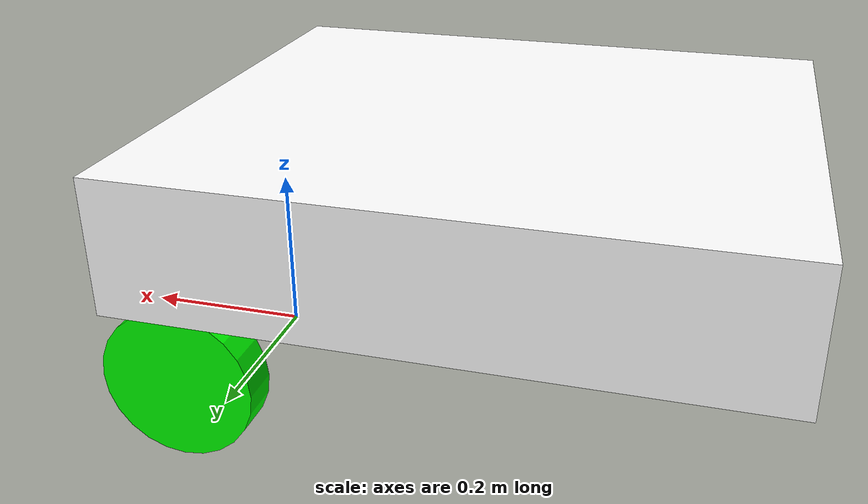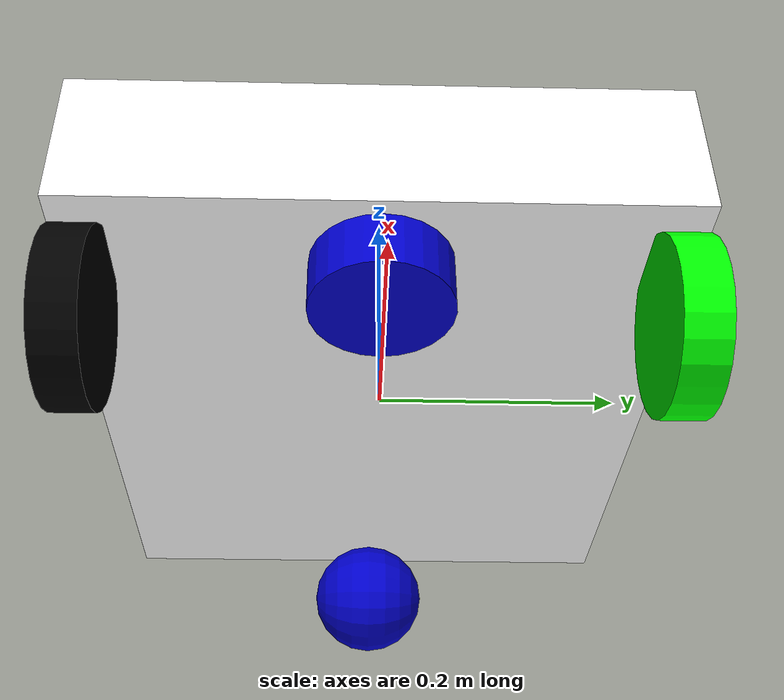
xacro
<?xml version="1.0"?>
<robot xmlns:xacro="http://www.ros.org/wiki/xacro"
 	xmlns:sensor="http://playerstage.sourceforge.net/gazebo/xmlschema/#sensor"
    	xmlns:controller="http://playerstage.sourceforge.net/gazebo/xmlschema/#controller"
    	xmlns:interface="http://playerstage.sourceforge.net/gazebo/xmlschema/#interface"
	name="bigbot">

	<!--This has base_footprint as base. base_link is wheel_radius above base_footprint
	 Laser is rotated 90 degrees
		Gazebo
			differential_drive_controller using base_footprint
			gpu_ray laser

	-->

	<!-- Defining the colors used in this robot -->
	<material name="Black">
	  <color rgba="0.0 0.0 0.0 1.0"/>
	</material>

	<material name="Red">
	  <color rgba="0.8 0.0 0.0 1.0"/>
	</material>

	<material name="White">
	  <color rgba="1.0 1.0 1.0 1.0"/>
	</material>

	<material name="Blue">
	  <color rgba="0.0 0.0 0.8 1.0"/>
	</material>

	<material name="Green">
	  <color rgba="0.0 1.0 0.0 1.0"/>
	</material>

	<!-- Defining parameters-->
	<xacro:property name="mass_base" value="24" />
	<xacro:property name="length_base" value="0.7001" />
	<xacro:property name="width_base" value="0.60325" />
	<xacro:property name="depth_base" value="0.1524" />

	<xacro:property name="wheel_base" value=" 0.5461" /> <!--23.25 in outside to outside  - 0.0435m width of wheel  -->
	<xacro:property name="length_wheel" value="0.0435" /> <!-- 0.0435 from diagram of wheel-->
	<xacro:property name="radius_wheel" value="0.085" /> <!-- 0.170 (from diagram of wheel)/2 -->
	<xacro:property name="extend_wheel" value="0.0" /> <!-- to be added to collision for axile -->
 	<xacro:property name="M_PI_2" value="1.570796327" />
 	<xacro:property name="M_PI" value="3.1415926535897931" />
	<xacro:property name="radius_caster" value="0.0635" />

        <!-- Define a macro -->
	<xacro:macro name="default_inertial" params="mass">
               <inertial>
                       <mass value="${mass}" />
                       <inertia ixx="1.0" ixy="0.0" ixz="0.0"
                                iyy="1.0" iyz="0.0"
                                izz="1.0" />
               </inertial>
	</xacro:macro>

	<xacro:macro name="cylinder_inertial" params="m r h">
		<inertial>
			<mass value="${m}" />
			<inertia  ixx="${m*(3*r*r+h*h)/12}" ixy = "0" ixz = "0"
	      		iyy="${m*(3*r*r+h*h)/12}" iyz = "0"
	      		izz="${m*r*r/2}" />
        </inertial>
	</xacro:macro>

	<!-- per https://en.wikipedia.org/wiki/List_of_moments_of_inertia
	  ixx = m/12(h * h  + d * d)
	  iyy = m/12(w * w  + d * d)
	  izz= m/12(w * w  + h * h)
	 -->

	<xacro:macro name="box_inertial" params="m w h d x">
		<inertial>
			 <mass value="${m}" />
			<inertia  ixx="${m*(h*h + d *d)/12}"
			ixy = "0" ixz = "0"
	      		iyy="${m*(w*w+d*d)/12}"
			iyz = "0"
	      		izz="${m*(h*h+w*w)/12}"
			/>

			<origin xyz="${x} 0 0"/>
        </inertial>
	</xacro:macro>

	<!-- base_footprint is a fictitious link(frame) that is on the ground right below base_link origin -->
	<link name="base_footprint">
		<pose xyz="0 0 .001" rpy="0 0 0" />
   		<visual>
			<geometry>
      				<box size="0.001 0.001 0.001"/>
     		</geometry>
			<origin rpy="0 0 0" xyz="0 0 0"/>
			<material name="Red"/>
   		</visual>
		<!--xacro:default_inertial mass="0.0001"/this was throwing an error-->

 	</link>

	<gazebo reference="base_footprint">
		<material>Gazebo/Red</material>
		<turnGravityOff>false</turnGravityOff>
	</gazebo>

	<joint name="base_footprint_joint" type="fixed">
		<origin xyz="0 0 ${radius_wheel}" rpy="0 0 0" />
		<parent link="base_footprint" />
		<child link="base_link" />
	</joint>

	<link name="base_link">
   		<visual>
			<geometry>
      				<box size="${length_base} ${width_base} ${depth_base}"/>
     			</geometry>
			<origin xyz="-0.274 0 ${depth_base}" rpy="0 0 0" />
			<material name="White"/>
   		</visual>
		<collision>
			<geometry>
       				<box size="${length_base} ${width_base} ${depth_base}"/>
			</geometry>
			<origin rpy="0 0 0" xyz="-0.274 0 0"/>
		</collision>

		<xacro:box_inertial m="${mass_base}" w="${width_base}" h="${length_base}" d="${depth_base}"  x="-0.274" />
 	</link>

	<gazebo reference="base_link">
	    <material>Gazebo/White</material>
	    <turnGravityOff>false</turnGravityOff>
	</gazebo>

 	<link name="left_wheel">
   		<visual>
     			<geometry>
       				<cylinder length="${length_wheel}" radius="${radius_wheel}"/>
     			</geometry>

			<origin rpy="0 0 0" xyz="0 0 0"/>
   			<material name="Green"/>
		</visual>
		<collision>
			<geometry>
       				<cylinder length="${length_wheel+ extend_wheel}" radius="${radius_wheel}"/>
			</geometry>
		</collision>
		<xacro:cylinder_inertial m="1" r="${radius_wheel}" h="${length_wheel}"/>
 	</link>

	<gazebo reference="left_wheel">
		<turnGravityOff>false</turnGravityOff>
	</gazebo>

 	<link name="right_wheel">
   		<visual>
     			<geometry>
       				<cylinder length="${length_wheel}" radius="${radius_wheel}"/>
     			</geometry>
			<origin rpy="0 0 0" xyz="0 0 0"/>
   			<material name="Black"/>
   		</visual>
		<collision>
			<geometry>
       				<cylinder length="${length_wheel+ extend_wheel}" radius="${radius_wheel}"/>
			</geometry>
		</collision>
		<xacro:cylinder_inertial m="1" r="${radius_wheel}" h="${length_wheel}"/>

 	</link>

	<gazebo reference="right_wheel">
		<turnGravityOff>false</turnGravityOff>
	</gazebo>

	 <joint name="base_to_left_wheel" type="continuous">
		<parent link="base_link"/>
		<child link="left_wheel"/>
		<origin rpy="1.5707 0 0" xyz="0 ${wheel_base/2} 0"/>
		<axis xyz="0 0 1" />
	 </joint>

	 <joint name="base_to_right_wheel" type="continuous">
		<parent link="base_link"/>
		<child link="right_wheel"/>
		<origin rpy="1.5707 0 0" xyz="0 ${-wheel_base/2} 0"/>
		<axis xyz="0 0 1" />
	 </joint>

	<!--Caster Back  -->

    <link name="caster_link">

		<visual>
		<origin xyz="0 0 0" rpy="${M_PI/2} 0 0" />
		<geometry>
			<sphere radius="${radius_caster}" />
		</geometry>
		<material name="Blue" />
		</visual>

		<collision>
		<geometry>
			<sphere radius="${radius_caster}" />
			</geometry>
		<origin xyz="0 0. 0" rpy="${M_PI/2} 0 0" />
		</collision>
		<inertial>
			<mass value="1" />
			<origin xyz="0 0 0" />
			<inertia ixx="0.001" ixy="0.0" ixz="0.0"
					iyy="0.001" iyz="0.0"
					izz="0.001" />
		</inertial>
    </link>

   <joint name="caster_joint" type="fixed">
      <parent link="base_link"/>
      <child link="caster_link"/>
      <origin xyz="-0.4948 0.0 -0.04048" rpy="0 0 0"/>
   </joint>

<!-- R was ${-M_PI/2} -->

  <!-- laser joint -->
  <joint name="laser_joint" type="fixed">
    <origin xyz="0.0635 0.0 -0.0127" rpy="0 0 0"/>
    <parent link="base_link"/>
    <axis xyz="0 1 0" />
    <child link="laser_point"/>
  </joint>

  <!-- laser joint -->
  <joint name="laser_rotate" type="fixed">
    <origin xyz="0 0 0" rpy="3.14 0 -1.57"/>
    <parent link="laser_point"/>
    <axis xyz="0 1 0" />
    <child link="laser_frame"/>
  </joint>

  <link name="laser_point">
    <collision>
      <origin xyz="0 0 0" rpy="0 0 0"/>
      <geometry>
        <cylinder length=".0001" radius="0.0001"/>
      </geometry>
    </collision>

    <visual>
      <origin xyz="0 0 0" rpy="0 0 0"/>
      <geometry>
        <cylinder length=".0001" radius="0.0001"/>
      </geometry>
      <material name="Blue" />
    </visual>

    <inertial>
      <mass value="1e-5" />
      <origin xyz="0 0 0" rpy="0 0 0"/>
      <inertia ixx="1e-6" ixy="0" ixz="0" iyy="1e-6" iyz="0" izz="1e-6" />
    </inertial>
  </link>

  <!-- sweep Laser -->
  <link name="laser_frame">
    <collision>
      <origin xyz="0 0 0" rpy="0 0 0"/>
      <geometry>
        <cylinder length=".0508" radius="0.0635"/>
      </geometry>
    </collision>

    <visual>
      <origin xyz="0 0 0" rpy="0 0 0"/>
      <geometry>
        <cylinder length=".0508" radius="0.0635"/>
      </geometry>
      <material name="Blue" />
    </visual>

    <inertial>
      <mass value="1e-5" />
      <origin xyz="0 0 0" rpy="0 0 0"/>
      <inertia ixx="1e-6" ixy="0" ixz="0" iyy="1e-6" iyz="0" izz="1e-6" />
    </inertial>
  </link>

  <gazebo reference="caster_link">
    <turnGravityOff>false</turnGravityOff>
  </gazebo>

  <!-- Differential drive controller  -->
  <gazebo>
    <plugin name="differential_drive_controller" filename="libgazebo_ros_diff_drive.so">

      <rosDebugLevel>Debug</rosDebugLevel>
      <publishWheelTF>false</publishWheelTF>
      <robotNamespace>/</robotNamespace>
      <publishTf>1</publishTf>
      <publishWheelJointState>false</publishWheelJointState>
      <alwaysOn>true</alwaysOn>
      <updateRate>100.0</updateRate>
      <leftJoint>base_to_left_wheel</leftJoint>
      <rightJoint>base_to_right_wheel</rightJoint>
      <wheelSeparation>${wheel_base}</wheelSeparation>
      <wheelDiameter>${2*radius_wheel}</wheelDiameter>
      <broadcastTF>1</broadcastTF>
      <wheelTorque>30</wheelTorque>
      <wheelAcceleration>1.8</wheelAcceleration>
      <commandTopic>cmd_vel</commandTopic>
      <odometryFrame>odom</odometryFrame>
      <odometryTopic>odom</odometryTopic>
      <robotBaseFrame>base_footprint</robotBaseFrame>

    </plugin>
  </gazebo>
<gazebo reference="laser_frame">
    <sensor type="gpu_ray" name="head_hokuyo_sensor">
      <pose>0 0 0 0 0 0</pose>
      <visualize>false</visualize>
      <update_rate>7</update_rate>
      <ray>
        <scan>
          <horizontal>
            <samples>720</samples>
            <resolution>1</resolution>
            <min_angle>-1.570796</min_angle>
            <max_angle>1.570796</max_angle>
          </horizontal>
        </scan>
        <range>
          <min>0.10</min>
          <max>12.0</max>
          <resolution>0.01</resolution>
        </range>
        <noise>
          <type>gaussian</type>
          <mean>0.0</mean>
          <stddev>0.01</stddev>
        </noise>
      </ray>
      <plugin name="gazebo_ros_head_hokuyo_controller" filename="libgazebo_ros_gpu_laser.so">
        <topicName>/scan</topicName>
        <frameName>hokuyo_link</frameName>
      </plugin>
    </sensor>
  </gazebo>

</robot>
